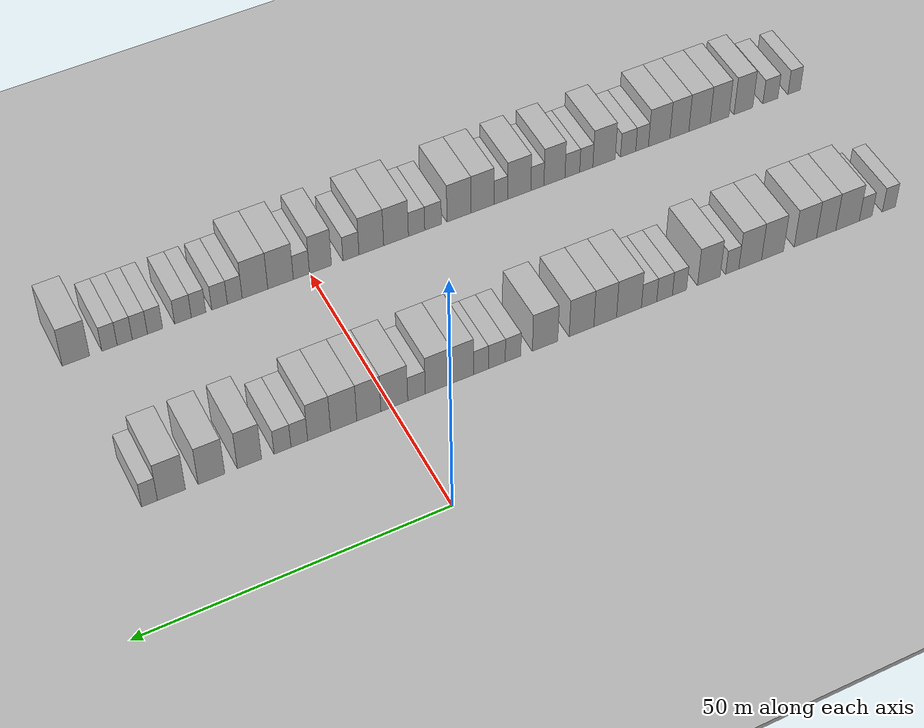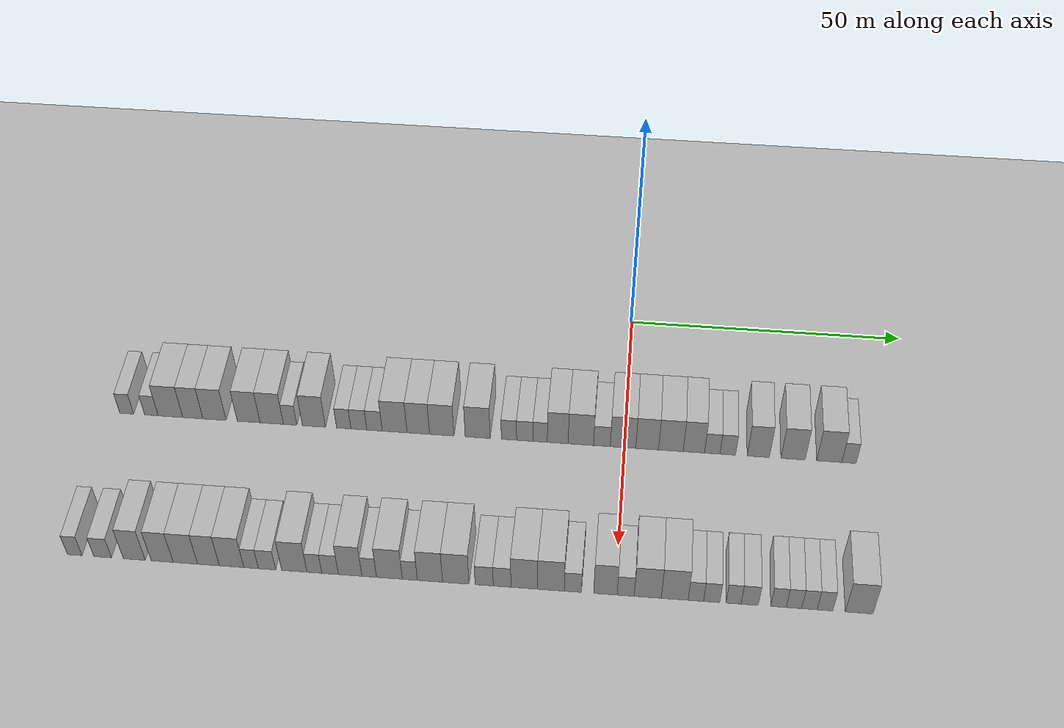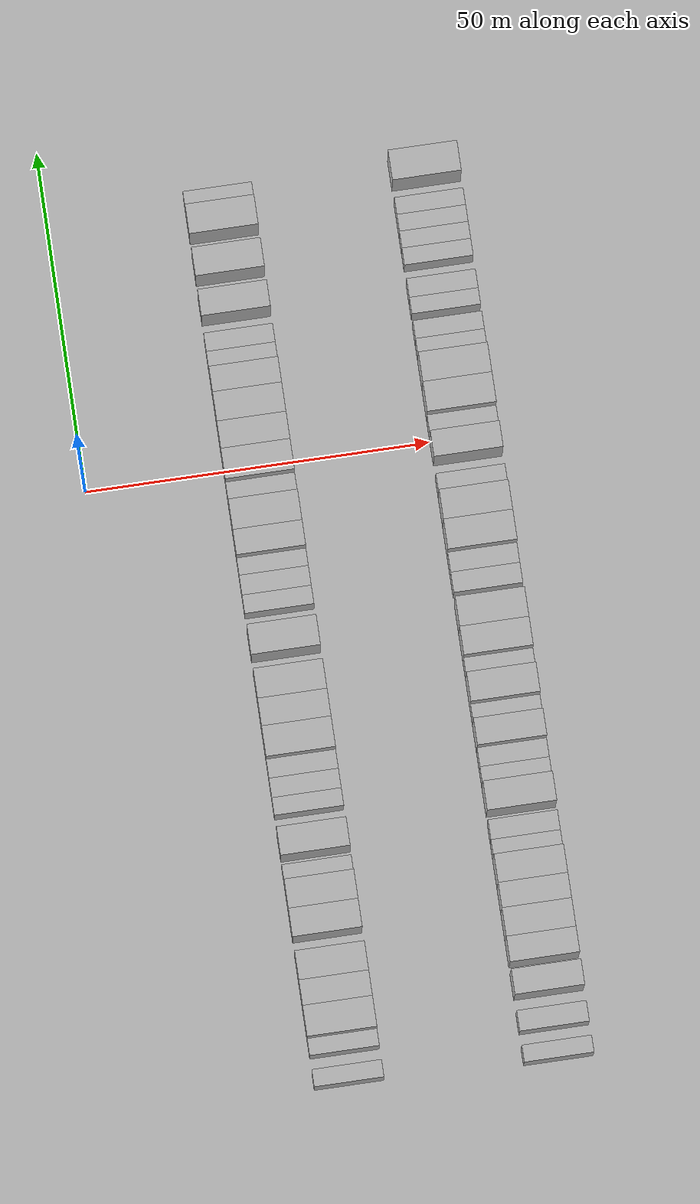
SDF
<sdf version="1.6">
 <world name="default">
  <include><name>ground_plane_1</name><uri>model://HANNAS_ground_plane</uri></include>
  <include>
   <name>ground_plane_2</name>
   <uri>model://HANNAS_ground_plane</uri>
   <pose>100 0 0  0 0 0</pose>
  </include>
  <model name="building_34">
   <static>1</static>
   <pose>25.0000 -89.0507 0 0.000000 0.000000 0.000000</pose>
   <link name="link">
    <pose>0 0 3.00 0 0 0</pose>
    <collision name="collision"><geometry><box><size>10.0000 2.5054 6.0000</size></box></geometry></collision>
    <visual name="visual">
     <cast_shadows>0</cast_shadows>
     <geometry><box><size>10.0000 2.5054 6.0000</size></box></geometry>
     <material>
      <script>
       <uri>model://HANNAS_wall/materials/scripts</uri>
       <uri>model://HANNAS_wall/materials/textures</uri>
       <name>vrc/HANNAS_wall</name>
      </script>
     </material>
    </visual>
   </link>
  </model>
  <model name="building_35">
   <static>1</static>
   <pose>25.0000 -84.5699 0 0.000000 0.000000 0.000000</pose>
   <link name="link">
    <pose>0 0 3.00 0 0 0</pose>
    <collision name="collision"><geometry><box><size>10.0000 2.4563 6.0000</size></box></geometry></collision>
    <visual name="visual">
     <cast_shadows>0</cast_shadows>
     <geometry><box><size>10.0000 2.4563 6.0000</size></box></geometry>
     <material>
      <script>
       <uri>model://HANNAS_wall/materials/scripts</uri>
       <uri>model://HANNAS_wall/materials/textures</uri>
       <name>vrc/HANNAS_wall</name>
      </script>
     </material>
    </visual>
   </link>
  </model>
  <model name="building_36">
   <static>1</static>
   <pose>25.0000 -81.1102 0 0.000000 0.000000 0.000000</pose>
   <link name="link">
    <pose>0 0 4.50 0 0 0</pose>
    <collision name="collision"><geometry><box><size>10.0000 4.4630 9.0000</size></box></geometry></collision>
    <visual name="visual">
     <cast_shadows>0</cast_shadows>
     <geometry><box><size>10.0000 4.4630 9.0000</size></box></geometry>
     <material>
      <script>
       <uri>model://HANNAS_wall/materials/scripts</uri>
       <uri>model://HANNAS_wall/materials/textures</uri>
       <name>vrc/HANNAS_wall</name>
      </script>
     </material>
    </visual>
   </link>
  </model>
  <model name="building_37">
   <static>1</static>
   <pose>25.0000 -77.0440 0 0.000000 0.000000 0.000000</pose>
   <link name="link">
    <pose>0 0 4.50 0 0 0</pose>
    <collision name="collision"><geometry><box><size>10.0000 3.6694 9.0000</size></box></geometry></collision>
    <visual name="visual">
     <cast_shadows>0</cast_shadows>
     <geometry><box><size>10.0000 3.6694 9.0000</size></box></geometry>
     <material>
      <script>
       <uri>model://HANNAS_wall/materials/scripts</uri>
       <uri>model://HANNAS_wall/materials/textures</uri>
       <name>vrc/HANNAS_wall</name>
      </script>
     </material>
    </visual>
   </link>
  </model>
  <model name="building_38">
   <static>1</static>
   <pose>25.0000 -73.1028 0 0.000000 0.000000 0.000000</pose>
   <link name="link">
    <pose>0 0 4.50 0 0 0</pose>
    <collision name="collision"><geometry><box><size>10.0000 4.2130 9.0000</size></box></geometry></collision>
    <visual name="visual">
     <cast_shadows>0</cast_shadows>
     <geometry><box><size>10.0000 4.2130 9.0000</size></box></geometry>
     <material>
      <script>
       <uri>model://HANNAS_wall/materials/scripts</uri>
       <uri>model://HANNAS_wall/materials/textures</uri>
       <name>vrc/HANNAS_wall</name>
      </script>
     </material>
    </visual>
   </link>
  </model>
  <model name="building_39">
   <static>1</static>
   <pose>25.0000 -66.9407 0 0.000000 0.000000 0.000000</pose>
   <link name="link">
    <pose>0 0 4.50 0 0 0</pose>
    <collision name="collision"><geometry><box><size>10.0000 4.1111 9.0000</size></box></geometry></collision>
    <visual name="visual">
     <cast_shadows>0</cast_shadows>
     <geometry><box><size>10.0000 4.1111 9.0000</size></box></geometry>
     <material>
      <script>
       <uri>model://HANNAS_wall/materials/scripts</uri>
       <uri>model://HANNAS_wall/materials/textures</uri>
       <name>vrc/HANNAS_wall</name>
      </script>
     </material>
    </visual>
   </link>
  </model>
  <model name="building_40">
   <static>1</static>
   <pose>25.0000 -62.7755 0 0.000000 0.000000 0.000000</pose>
   <link name="link">
    <pose>0 0 4.50 0 0 0</pose>
    <collision name="collision"><geometry><box><size>10.0000 4.2194 9.0000</size></box></geometry></collision>
    <visual name="visual">
     <cast_shadows>0</cast_shadows>
     <geometry><box><size>10.0000 4.2194 9.0000</size></box></geometry>
     <material>
      <script>
       <uri>model://HANNAS_wall/materials/scripts</uri>
       <uri>model://HANNAS_wall/materials/textures</uri>
       <name>vrc/HANNAS_wall</name>
      </script>
     </material>
    </visual>
   </link>
  </model>
  <model name="building_41">
   <static>1</static>
   <pose>25.0000 -59.4509 0 0.000000 0.000000 0.000000</pose>
   <link name="link">
    <pose>0 0 3.00 0 0 0</pose>
    <collision name="collision"><geometry><box><size>10.0000 2.4296 6.0000</size></box></geometry></collision>
    <visual name="visual">
     <cast_shadows>0</cast_shadows>
     <geometry><box><size>10.0000 2.4296 6.0000</size></box></geometry>
     <material>
      <script>
       <uri>model://HANNAS_wall/materials/scripts</uri>
       <uri>model://HANNAS_wall/materials/textures</uri>
       <name>vrc/HANNAS_wall</name>
      </script>
     </material>
    </visual>
   </link>
  </model>
  <model name="building_42">
   <static>1</static>
   <pose>25.0000 -55.1641 0 0.000000 0.000000 0.000000</pose>
   <link name="link">
    <pose>0 0 4.50 0 0 0</pose>
    <collision name="collision"><geometry><box><size>10.0000 4.1441 9.0000</size></box></geometry></collision>
    <visual name="visual">
     <cast_shadows>0</cast_shadows>
     <geometry><box><size>10.0000 4.1441 9.0000</size></box></geometry>
     <material>
      <script>
       <uri>model://HANNAS_wall/materials/scripts</uri>
       <uri>model://HANNAS_wall/materials/textures</uri>
       <name>vrc/HANNAS_wall</name>
      </script>
     </material>
    </visual>
   </link>
  </model>
  <model name="building_43">
   <static>1</static>
   <pose>25.0000 -49.8075 0 0.000000 0.000000 0.000000</pose>
   <link name="link">
    <pose>0 0 3.00 0 0 0</pose>
    <collision name="collision"><geometry><box><size>10.0000 2.5692 6.0000</size></box></geometry></collision>
    <visual name="visual">
     <cast_shadows>0</cast_shadows>
     <geometry><box><size>10.0000 2.5692 6.0000</size></box></geometry>
     <material>
      <script>
       <uri>model://HANNAS_wall/materials/scripts</uri>
       <uri>model://HANNAS_wall/materials/textures</uri>
       <name>vrc/HANNAS_wall</name>
      </script>
     </material>
    </visual>
   </link>
  </model>
  <model name="building_44">
   <static>1</static>
   <pose>25.0000 -47.1094 0 0.000000 0.000000 0.000000</pose>
   <link name="link">
    <pose>0 0 3.00 0 0 0</pose>
    <collision name="collision"><geometry><box><size>10.0000 2.8269 6.0000</size></box></geometry></collision>
    <visual name="visual">
     <cast_shadows>0</cast_shadows>
     <geometry><box><size>10.0000 2.8269 6.0000</size></box></geometry>
     <material>
      <script>
       <uri>model://HANNAS_wall/materials/scripts</uri>
       <uri>model://HANNAS_wall/materials/textures</uri>
       <name>vrc/HANNAS_wall</name>
      </script>
     </material>
    </visual>
   </link>
  </model>
  <model name="building_45">
   <static>1</static>
   <pose>25.0000 -44.3170 0 0.000000 0.000000 0.000000</pose>
   <link name="link">
    <pose>0 0 3.00 0 0 0</pose>
    <collision name="collision"><geometry><box><size>10.0000 2.7580 6.0000</size></box></geometry></collision>
    <visual name="visual">
     <cast_shadows>0</cast_shadows>
     <geometry><box><size>10.0000 2.7580 6.0000</size></box></geometry>
     <material>
      <script>
       <uri>model://HANNAS_wall/materials/scripts</uri>
       <uri>model://HANNAS_wall/materials/textures</uri>
       <name>vrc/HANNAS_wall</name>
      </script>
     </material>
    </visual>
   </link>
  </model>
  <model name="building_46">
   <static>1</static>
   <pose>25.0000 -40.7145 0 0.000000 0.000000 0.000000</pose>
   <link name="link">
    <pose>0 0 4.50 0 0 0</pose>
    <collision name="collision"><geometry><box><size>10.0000 4.4470 9.0000</size></box></geometry></collision>
    <visual name="visual">
     <cast_shadows>0</cast_shadows>
     <geometry><box><size>10.0000 4.4470 9.0000</size></box></geometry>
     <material>
      <script>
       <uri>model://HANNAS_wall/materials/scripts</uri>
       <uri>model://HANNAS_wall/materials/textures</uri>
       <name>vrc/HANNAS_wall</name>
      </script>
     </material>
    </visual>
   </link>
  </model>
  <model name="building_47">
   <static>1</static>
   <pose>25.0000 -36.4850 0 0.000000 0.000000 0.000000</pose>
   <link name="link">
    <pose>0 0 4.50 0 0 0</pose>
    <collision name="collision"><geometry><box><size>10.0000 4.0119 9.0000</size></box></geometry></collision>
    <visual name="visual">
     <cast_shadows>0</cast_shadows>
     <geometry><box><size>10.0000 4.0119 9.0000</size></box></geometry>
     <material>
      <script>
       <uri>model://HANNAS_wall/materials/scripts</uri>
       <uri>model://HANNAS_wall/materials/textures</uri>
       <name>vrc/HANNAS_wall</name>
      </script>
     </material>
    </visual>
   </link>
  </model>
  <model name="building_48">
   <static>1</static>
   <pose>25.0000 -32.3039 0 0.000000 0.000000 0.000000</pose>
   <link name="link">
    <pose>0 0 4.50 0 0 0</pose>
    <collision name="collision"><geometry><box><size>10.0000 4.3503 9.0000</size></box></geometry></collision>
    <visual name="visual">
     <cast_shadows>0</cast_shadows>
     <geometry><box><size>10.0000 4.3503 9.0000</size></box></geometry>
     <material>
      <script>
       <uri>model://HANNAS_wall/materials/scripts</uri>
       <uri>model://HANNAS_wall/materials/textures</uri>
       <name>vrc/HANNAS_wall</name>
      </script>
     </material>
    </visual>
   </link>
  </model>
  <model name="building_49">
   <static>1</static>
   <pose>25.0000 -25.9211 0 0.000000 0.000000 0.000000</pose>
   <link name="link">
    <pose>0 0 4.50 0 0 0</pose>
    <collision name="collision"><geometry><box><size>10.0000 4.4153 9.0000</size></box></geometry></collision>
    <visual name="visual">
     <cast_shadows>0</cast_shadows>
     <geometry><box><size>10.0000 4.4153 9.0000</size></box></geometry>
     <material>
      <script>
       <uri>model://HANNAS_wall/materials/scripts</uri>
       <uri>model://HANNAS_wall/materials/textures</uri>
       <name>vrc/HANNAS_wall</name>
      </script>
     </material>
    </visual>
   </link>
  </model>
  <model name="building_50">
   <static>1</static>
   <pose>25.0000 -20.3641 0 0.000000 0.000000 0.000000</pose>
   <link name="link">
    <pose>0 0 3.00 0 0 0</pose>
    <collision name="collision"><geometry><box><size>10.0000 2.6986 6.0000</size></box></geometry></collision>
    <visual name="visual">
     <cast_shadows>0</cast_shadows>
     <geometry><box><size>10.0000 2.6986 6.0000</size></box></geometry>
     <material>
      <script>
       <uri>model://HANNAS_wall/materials/scripts</uri>
       <uri>model://HANNAS_wall/materials/textures</uri>
       <name>vrc/HANNAS_wall</name>
      </script>
     </material>
    </visual>
   </link>
  </model>
  <model name="building_51">
   <static>1</static>
   <pose>25.0000 -17.5680 0 0.000000 0.000000 0.000000</pose>
   <link name="link">
    <pose>0 0 3.00 0 0 0</pose>
    <collision name="collision"><geometry><box><size>10.0000 2.8935 6.0000</size></box></geometry></collision>
    <visual name="visual">
     <cast_shadows>0</cast_shadows>
     <geometry><box><size>10.0000 2.8935 6.0000</size></box></geometry>
     <material>
      <script>
       <uri>model://HANNAS_wall/materials/scripts</uri>
       <uri>model://HANNAS_wall/materials/textures</uri>
       <name>vrc/HANNAS_wall</name>
      </script>
     </material>
    </visual>
   </link>
  </model>
  <model name="building_52">
   <static>1</static>
   <pose>25.0000 -14.8546 0 0.000000 0.000000 0.000000</pose>
   <link name="link">
    <pose>0 0 3.00 0 0 0</pose>
    <collision name="collision"><geometry><box><size>10.0000 2.5333 6.0000</size></box></geometry></collision>
    <visual name="visual">
     <cast_shadows>0</cast_shadows>
     <geometry><box><size>10.0000 2.5333 6.0000</size></box></geometry>
     <material>
      <script>
       <uri>model://HANNAS_wall/materials/scripts</uri>
       <uri>model://HANNAS_wall/materials/textures</uri>
       <name>vrc/HANNAS_wall</name>
      </script>
     </material>
    </visual>
   </link>
  </model>
  <model name="building_53">
   <static>1</static>
   <pose>25.0000 -11.7378 0 0.000000 0.000000 0.000000</pose>
   <link name="link">
    <pose>0 0 4.50 0 0 0</pose>
    <collision name="collision"><geometry><box><size>10.0000 3.7003 9.0000</size></box></geometry></collision>
    <visual name="visual">
     <cast_shadows>0</cast_shadows>
     <geometry><box><size>10.0000 3.7003 9.0000</size></box></geometry>
     <material>
      <script>
       <uri>model://HANNAS_wall/materials/scripts</uri>
       <uri>model://HANNAS_wall/materials/textures</uri>
       <name>vrc/HANNAS_wall</name>
      </script>
     </material>
    </visual>
   </link>
  </model>
  <model name="building_54">
   <static>1</static>
   <pose>25.0000 -7.6549 0 0.000000 0.000000 0.000000</pose>
   <link name="link">
    <pose>0 0 4.50 0 0 0</pose>
    <collision name="collision"><geometry><box><size>10.0000 4.4654 9.0000</size></box></geometry></collision>
    <visual name="visual">
     <cast_shadows>0</cast_shadows>
     <geometry><box><size>10.0000 4.4654 9.0000</size></box></geometry>
     <material>
      <script>
       <uri>model://HANNAS_wall/materials/scripts</uri>
       <uri>model://HANNAS_wall/materials/textures</uri>
       <name>vrc/HANNAS_wall</name>
      </script>
     </material>
    </visual>
   </link>
  </model>
  <model name="building_55">
   <static>1</static>
   <pose>25.0000 -3.9499 0 0.000000 0.000000 0.000000</pose>
   <link name="link">
    <pose>0 0 3.00 0 0 0</pose>
    <collision name="collision"><geometry><box><size>10.0000 2.9447 6.0000</size></box></geometry></collision>
    <visual name="visual">
     <cast_shadows>0</cast_shadows>
     <geometry><box><size>10.0000 2.9447 6.0000</size></box></geometry>
     <material>
      <script>
       <uri>model://HANNAS_wall/materials/scripts</uri>
       <uri>model://HANNAS_wall/materials/textures</uri>
       <name>vrc/HANNAS_wall</name>
      </script>
     </material>
    </visual>
   </link>
  </model>
  <model name="building_56">
   <static>1</static>
   <pose>25.0000 -0.2417 0 0.000000 0.000000 0.000000</pose>
   <link name="link">
    <pose>0 0 4.50 0 0 0</pose>
    <collision name="collision"><geometry><box><size>10.0000 4.4717 9.0000</size></box></geometry></collision>
    <visual name="visual">
     <cast_shadows>0</cast_shadows>
     <geometry><box><size>10.0000 4.4717 9.0000</size></box></geometry>
     <material>
      <script>
       <uri>model://HANNAS_wall/materials/scripts</uri>
       <uri>model://HANNAS_wall/materials/textures</uri>
       <name>vrc/HANNAS_wall</name>
      </script>
     </material>
    </visual>
   </link>
  </model>
  <model name="building_57">
   <static>1</static>
   <pose>25.0000 3.9892 0 0.000000 0.000000 0.000000</pose>
   <link name="link">
    <pose>0 0 4.50 0 0 0</pose>
    <collision name="collision"><geometry><box><size>10.0000 3.9901 9.0000</size></box></geometry></collision>
    <visual name="visual">
     <cast_shadows>0</cast_shadows>
     <geometry><box><size>10.0000 3.9901 9.0000</size></box></geometry>
     <material>
      <script>
       <uri>model://HANNAS_wall/materials/scripts</uri>
       <uri>model://HANNAS_wall/materials/textures</uri>
       <name>vrc/HANNAS_wall</name>
      </script>
     </material>
    </visual>
   </link>
  </model>
  <model name="building_58">
   <static>1</static>
   <pose>25.0000 8.1380 0 0.000000 0.000000 0.000000</pose>
   <link name="link">
    <pose>0 0 4.50 0 0 0</pose>
    <collision name="collision"><geometry><box><size>10.0000 4.3075 9.0000</size></box></geometry></collision>
    <visual name="visual">
     <cast_shadows>0</cast_shadows>
     <geometry><box><size>10.0000 4.3075 9.0000</size></box></geometry>
     <material>
      <script>
       <uri>model://HANNAS_wall/materials/scripts</uri>
       <uri>model://HANNAS_wall/materials/textures</uri>
       <name>vrc/HANNAS_wall</name>
      </script>
     </material>
    </visual>
   </link>
  </model>
  <model name="building_59">
   <static>1</static>
   <pose>25.0000 12.1608 0 0.000000 0.000000 0.000000</pose>
   <link name="link">
    <pose>0 0 4.50 0 0 0</pose>
    <collision name="collision"><geometry><box><size>10.0000 3.7382 9.0000</size></box></geometry></collision>
    <visual name="visual">
     <cast_shadows>0</cast_shadows>
     <geometry><box><size>10.0000 3.7382 9.0000</size></box></geometry>
     <material>
      <script>
       <uri>model://HANNAS_wall/materials/scripts</uri>
       <uri>model://HANNAS_wall/materials/textures</uri>
       <name>vrc/HANNAS_wall</name>
      </script>
     </material>
    </visual>
   </link>
  </model>
  <model name="building_60">
   <static>1</static>
   <pose>25.0000 15.3800 0 0.000000 0.000000 0.000000</pose>
   <link name="link">
    <pose>0 0 3.00 0 0 0</pose>
    <collision name="collision"><geometry><box><size>10.0000 2.7000 6.0000</size></box></geometry></collision>
    <visual name="visual">
     <cast_shadows>0</cast_shadows>
     <geometry><box><size>10.0000 2.7000 6.0000</size></box></geometry>
     <material>
      <script>
       <uri>model://HANNAS_wall/materials/scripts</uri>
       <uri>model://HANNAS_wall/materials/textures</uri>
       <name>vrc/HANNAS_wall</name>
      </script>
     </material>
    </visual>
   </link>
  </model>
  <model name="building_61">
   <static>1</static>
   <pose>25.0000 18.0946 0 0.000000 0.000000 0.000000</pose>
   <link name="link">
    <pose>0 0 3.00 0 0 0</pose>
    <collision name="collision"><geometry><box><size>10.0000 2.7292 6.0000</size></box></geometry></collision>
    <visual name="visual">
     <cast_shadows>0</cast_shadows>
     <geometry><box><size>10.0000 2.7292 6.0000</size></box></geometry>
     <material>
      <script>
       <uri>model://HANNAS_wall/materials/scripts</uri>
       <uri>model://HANNAS_wall/materials/textures</uri>
       <name>vrc/HANNAS_wall</name>
      </script>
     </material>
    </visual>
   </link>
  </model>
  <model name="building_62">
   <static>1</static>
   <pose>25.0000 23.4004 0 0.000000 0.000000 0.000000</pose>
   <link name="link">
    <pose>0 0 4.50 0 0 0</pose>
    <collision name="collision"><geometry><box><size>10.0000 3.8824 9.0000</size></box></geometry></collision>
    <visual name="visual">
     <cast_shadows>0</cast_shadows>
     <geometry><box><size>10.0000 3.8824 9.0000</size></box></geometry>
     <material>
      <script>
       <uri>model://HANNAS_wall/materials/scripts</uri>
       <uri>model://HANNAS_wall/materials/textures</uri>
       <name>vrc/HANNAS_wall</name>
      </script>
     </material>
    </visual>
   </link>
  </model>
  <model name="building_63">
   <static>1</static>
   <pose>25.0000 29.4496 0 0.000000 0.000000 0.000000</pose>
   <link name="link">
    <pose>0 0 4.50 0 0 0</pose>
    <collision name="collision"><geometry><box><size>10.0000 4.2161 9.0000</size></box></geometry></collision>
    <visual name="visual">
     <cast_shadows>0</cast_shadows>
     <geometry><box><size>10.0000 4.2161 9.0000</size></box></geometry>
     <material>
      <script>
       <uri>model://HANNAS_wall/materials/scripts</uri>
       <uri>model://HANNAS_wall/materials/textures</uri>
       <name>vrc/HANNAS_wall</name>
      </script>
     </material>
    </visual>
   </link>
  </model>
  <model name="building_64">
   <static>1</static>
   <pose>25.0000 35.7394 0 0.000000 0.000000 0.000000</pose>
   <link name="link">
    <pose>0 0 4.50 0 0 0</pose>
    <collision name="collision"><geometry><box><size>10.0000 4.3635 9.0000</size></box></geometry></collision>
    <visual name="visual">
     <cast_shadows>0</cast_shadows>
     <geometry><box><size>10.0000 4.3635 9.0000</size></box></geometry>
     <material>
      <script>
       <uri>model://HANNAS_wall/materials/scripts</uri>
       <uri>model://HANNAS_wall/materials/textures</uri>
       <name>vrc/HANNAS_wall</name>
      </script>
     </material>
    </visual>
   </link>
  </model>
  <model name="building_65">
   <static>1</static>
   <pose>25.0000 39.1544 0 0.000000 0.000000 0.000000</pose>
   <link name="link">
    <pose>0 0 3.00 0 0 0</pose>
    <collision name="collision"><geometry><box><size>10.0000 2.4665 6.0000</size></box></geometry></collision>
    <visual name="visual">
     <cast_shadows>0</cast_shadows>
     <geometry><box><size>10.0000 2.4665 6.0000</size></box></geometry>
     <material>
      <script>
       <uri>model://HANNAS_wall/materials/scripts</uri>
       <uri>model://HANNAS_wall/materials/textures</uri>
       <name>vrc/HANNAS_wall</name>
      </script>
     </material>
    </visual>
   </link>
  </model>
  <model name="building_127">
   <static>1</static>
   <pose>55.0000 -89.8999 0 0.000000 0.000000 0.000000</pose>
   <link name="link">
    <pose>0 0 3.00 0 0 0</pose>
    <collision name="collision"><geometry><box><size>10.0000 2.4620 6.0000</size></box></geometry></collision>
    <visual name="visual">
     <cast_shadows>0</cast_shadows>
     <geometry><box><size>10.0000 2.4620 6.0000</size></box></geometry>
     <material>
      <script>
       <uri>model://HANNAS_wall/materials/scripts</uri>
       <uri>model://HANNAS_wall/materials/textures</uri>
       <name>vrc/HANNAS_wall</name>
      </script>
     </material>
    </visual>
   </link>
  </model>
  <model name="building_128">
   <static>1</static>
   <pose>55.0000 -85.1788 0 0.000000 0.000000 0.000000</pose>
   <link name="link">
    <pose>0 0 3.00 0 0 0</pose>
    <collision name="collision"><geometry><box><size>10.0000 2.9803 6.0000</size></box></geometry></collision>
    <visual name="visual">
     <cast_shadows>0</cast_shadows>
     <geometry><box><size>10.0000 2.9803 6.0000</size></box></geometry>
     <material>
      <script>
       <uri>model://HANNAS_wall/materials/scripts</uri>
       <uri>model://HANNAS_wall/materials/textures</uri>
       <name>vrc/HANNAS_wall</name>
      </script>
     </material>
    </visual>
   </link>
  </model>
  <model name="building_129">
   <static>1</static>
   <pose>55.0000 -79.8422 0 0.000000 0.000000 0.000000</pose>
   <link name="link">
    <pose>0 0 4.50 0 0 0</pose>
    <collision name="collision"><geometry><box><size>10.0000 3.6928 9.0000</size></box></geometry></collision>
    <visual name="visual">
     <cast_shadows>0</cast_shadows>
     <geometry><box><size>10.0000 3.6928 9.0000</size></box></geometry>
     <material>
      <script>
       <uri>model://HANNAS_wall/materials/scripts</uri>
       <uri>model://HANNAS_wall/materials/textures</uri>
       <name>vrc/HANNAS_wall</name>
      </script>
     </material>
    </visual>
   </link>
  </model>
  <model name="building_130">
   <static>1</static>
   <pose>55.0000 -75.1509 0 0.000000 0.000000 0.000000</pose>
   <link name="link">
    <pose>0 0 4.50 0 0 0</pose>
    <collision name="collision"><geometry><box><size>10.0000 3.6899 9.0000</size></box></geometry></collision>
    <visual name="visual">
     <cast_shadows>0</cast_shadows>
     <geometry><box><size>10.0000 3.6899 9.0000</size></box></geometry>
     <material>
      <script>
       <uri>model://HANNAS_wall/materials/scripts</uri>
       <uri>model://HANNAS_wall/materials/textures</uri>
       <name>vrc/HANNAS_wall</name>
      </script>
     </material>
    </visual>
   </link>
  </model>
  <model name="building_131">
   <static>1</static>
   <pose>55.0000 -71.2461 0 0.000000 0.000000 0.000000</pose>
   <link name="link">
    <pose>0 0 4.50 0 0 0</pose>
    <collision name="collision"><geometry><box><size>10.0000 4.1197 9.0000</size></box></geometry></collision>
    <visual name="visual">
     <cast_shadows>0</cast_shadows>
     <geometry><box><size>10.0000 4.1197 9.0000</size></box></geometry>
     <material>
      <script>
       <uri>model://HANNAS_wall/materials/scripts</uri>
       <uri>model://HANNAS_wall/materials/textures</uri>
       <name>vrc/HANNAS_wall</name>
      </script>
     </material>
    </visual>
   </link>
  </model>
  <model name="building_132">
   <static>1</static>
   <pose>55.0000 -67.3628 0 0.000000 0.000000 0.000000</pose>
   <link name="link">
    <pose>0 0 4.50 0 0 0</pose>
    <collision name="collision"><geometry><box><size>10.0000 3.6469 9.0000</size></box></geometry></collision>
    <visual name="visual">
     <cast_shadows>0</cast_shadows>
     <geometry><box><size>10.0000 3.6469 9.0000</size></box></geometry>
     <material>
      <script>
       <uri>model://HANNAS_wall/materials/scripts</uri>
       <uri>model://HANNAS_wall/materials/textures</uri>
       <name>vrc/HANNAS_wall</name>
      </script>
     </material>
    </visual>
   </link>
  </model>
  <model name="building_133">
   <static>1</static>
   <pose>55.0000 -63.4818 0 0.000000 0.000000 0.000000</pose>
   <link name="link">
    <pose>0 0 4.50 0 0 0</pose>
    <collision name="collision"><geometry><box><size>10.0000 4.1150 9.0000</size></box></geometry></collision>
    <visual name="visual">
     <cast_shadows>0</cast_shadows>
     <geometry><box><size>10.0000 4.1150 9.0000</size></box></geometry>
     <material>
      <script>
       <uri>model://HANNAS_wall/materials/scripts</uri>
       <uri>model://HANNAS_wall/materials/textures</uri>
       <name>vrc/HANNAS_wall</name>
      </script>
     </material>
    </visual>
   </link>
  </model>
  <model name="building_134">
   <static>1</static>
   <pose>55.0000 -60.2081 0 0.000000 0.000000 0.000000</pose>
   <link name="link">
    <pose>0 0 3.00 0 0 0</pose>
    <collision name="collision"><geometry><box><size>10.0000 2.4324 6.0000</size></box></geometry></collision>
    <visual name="visual">
     <cast_shadows>0</cast_shadows>
     <geometry><box><size>10.0000 2.4324 6.0000</size></box></geometry>
     <material>
      <script>
       <uri>model://HANNAS_wall/materials/scripts</uri>
       <uri>model://HANNAS_wall/materials/textures</uri>
       <name>vrc/HANNAS_wall</name>
      </script>
     </material>
    </visual>
   </link>
  </model>
  <model name="building_135">
   <static>1</static>
   <pose>55.0000 -57.5445 0 0.000000 0.000000 0.000000</pose>
   <link name="link">
    <pose>0 0 3.00 0 0 0</pose>
    <collision name="collision"><geometry><box><size>10.0000 2.8948 6.0000</size></box></geometry></collision>
    <visual name="visual">
     <cast_shadows>0</cast_shadows>
     <geometry><box><size>10.0000 2.8948 6.0000</size></box></geometry>
     <material>
      <script>
       <uri>model://HANNAS_wall/materials/scripts</uri>
       <uri>model://HANNAS_wall/materials/textures</uri>
       <name>vrc/HANNAS_wall</name>
      </script>
     </material>
    </visual>
   </link>
  </model>
  <model name="building_136">
   <static>1</static>
   <pose>55.0000 -52.9820 0 0.000000 0.000000 0.000000</pose>
   <link name="link">
    <pose>0 0 4.50 0 0 0</pose>
    <collision name="collision"><geometry><box><size>10.0000 4.2301 9.0000</size></box></geometry></collision>
    <visual name="visual">
     <cast_shadows>0</cast_shadows>
     <geometry><box><size>10.0000 4.2301 9.0000</size></box></geometry>
     <material>
      <script>
       <uri>model://HANNAS_wall/materials/scripts</uri>
       <uri>model://HANNAS_wall/materials/textures</uri>
       <name>vrc/HANNAS_wall</name>
      </script>
     </material>
    </visual>
   </link>
  </model>
  <model name="building_137">
   <static>1</static>
   <pose>55.0000 -49.6366 0 0.000000 0.000000 0.000000</pose>
   <link name="link">
    <pose>0 0 3.00 0 0 0</pose>
    <collision name="collision"><geometry><box><size>10.0000 2.4607 6.0000</size></box></geometry></collision>
    <visual name="visual">
     <cast_shadows>0</cast_shadows>
     <geometry><box><size>10.0000 2.4607 6.0000</size></box></geometry>
     <material>
      <script>
       <uri>model://HANNAS_wall/materials/scripts</uri>
       <uri>model://HANNAS_wall/materials/textures</uri>
       <name>vrc/HANNAS_wall</name>
      </script>
     </material>
    </visual>
   </link>
  </model>
  <model name="building_138">
   <static>1</static>
   <pose>55.0000 -47.0267 0 0.000000 0.000000 0.000000</pose>
   <link name="link">
    <pose>0 0 3.00 0 0 0</pose>
    <collision name="collision"><geometry><box><size>10.0000 2.7591 6.0000</size></box></geometry></collision>
    <visual name="visual">
     <cast_shadows>0</cast_shadows>
     <geometry><box><size>10.0000 2.7591 6.0000</size></box></geometry>
     <material>
      <script>
       <uri>model://HANNAS_wall/materials/scripts</uri>
       <uri>model://HANNAS_wall/materials/textures</uri>
       <name>vrc/HANNAS_wall</name>
      </script>
     </material>
    </visual>
   </link>
  </model>
  <model name="building_139">
   <static>1</static>
   <pose>55.0000 -43.6914 0 0.000000 0.000000 0.000000</pose>
   <link name="link">
    <pose>0 0 4.50 0 0 0</pose>
    <collision name="collision"><geometry><box><size>10.0000 3.9114 9.0000</size></box></geometry></collision>
    <visual name="visual">
     <cast_shadows>0</cast_shadows>
     <geometry><box><size>10.0000 3.9114 9.0000</size></box></geometry>
     <material>
      <script>
       <uri>model://HANNAS_wall/materials/scripts</uri>
       <uri>model://HANNAS_wall/materials/textures</uri>
       <name>vrc/HANNAS_wall</name>
      </script>
     </material>
    </visual>
   </link>
  </model>
  <model name="building_140">
   <static>1</static>
   <pose>55.0000 -40.5246 0 0.000000 0.000000 0.000000</pose>
   <link name="link">
    <pose>0 0 3.00 0 0 0</pose>
    <collision name="collision"><geometry><box><size>10.0000 2.4222 6.0000</size></box></geometry></collision>
    <visual name="visual">
     <cast_shadows>0</cast_shadows>
     <geometry><box><size>10.0000 2.4222 6.0000</size></box></geometry>
     <material>
      <script>
       <uri>model://HANNAS_wall/materials/scripts</uri>
       <uri>model://HANNAS_wall/materials/textures</uri>
       <name>vrc/HANNAS_wall</name>
      </script>
     </material>
    </visual>
   </link>
  </model>
  <model name="building_141">
   <static>1</static>
   <pose>55.0000 -37.1706 0 0.000000 0.000000 0.000000</pose>
   <link name="link">
    <pose>0 0 4.50 0 0 0</pose>
    <collision name="collision"><geometry><box><size>10.0000 4.2858 9.0000</size></box></geometry></collision>
    <visual name="visual">
     <cast_shadows>0</cast_shadows>
     <geometry><box><size>10.0000 4.2858 9.0000</size></box></geometry>
     <material>
      <script>
       <uri>model://HANNAS_wall/materials/scripts</uri>
       <uri>model://HANNAS_wall/materials/textures</uri>
       <name>vrc/HANNAS_wall</name>
      </script>
     </material>
    </visual>
   </link>
  </model>
  <model name="building_142">
   <static>1</static>
   <pose>55.0000 -33.7890 0 0.000000 0.000000 0.000000</pose>
   <link name="link">
    <pose>0 0 3.00 0 0 0</pose>
    <collision name="collision"><geometry><box><size>10.0000 2.4775 6.0000</size></box></geometry></collision>
    <visual name="visual">
     <cast_shadows>0</cast_shadows>
     <geometry><box><size>10.0000 2.4775 6.0000</size></box></geometry>
     <material>
      <script>
       <uri>model://HANNAS_wall/materials/scripts</uri>
       <uri>model://HANNAS_wall/materials/textures</uri>
       <name>vrc/HANNAS_wall</name>
      </script>
     </material>
    </visual>
   </link>
  </model>
  <model name="building_143">
   <static>1</static>
   <pose>55.0000 -30.4707 0 0.000000 0.000000 0.000000</pose>
   <link name="link">
    <pose>0 0 4.50 0 0 0</pose>
    <collision name="collision"><geometry><box><size>10.0000 4.1591 9.0000</size></box></geometry></collision>
    <visual name="visual">
     <cast_shadows>0</cast_shadows>
     <geometry><box><size>10.0000 4.1591 9.0000</size></box></geometry>
     <material>
      <script>
       <uri>model://HANNAS_wall/materials/scripts</uri>
       <uri>model://HANNAS_wall/materials/textures</uri>
       <name>vrc/HANNAS_wall</name>
      </script>
     </material>
    </visual>
   </link>
  </model>
  <model name="building_144">
   <static>1</static>
   <pose>55.0000 -26.2092 0 0.000000 0.000000 0.000000</pose>
   <link name="link">
    <pose>0 0 4.50 0 0 0</pose>
    <collision name="collision"><geometry><box><size>10.0000 4.3640 9.0000</size></box></geometry></collision>
    <visual name="visual">
     <cast_shadows>0</cast_shadows>
     <geometry><box><size>10.0000 4.3640 9.0000</size></box></geometry>
     <material>
      <script>
       <uri>model://HANNAS_wall/materials/scripts</uri>
       <uri>model://HANNAS_wall/materials/textures</uri>
       <name>vrc/HANNAS_wall</name>
      </script>
     </material>
    </visual>
   </link>
  </model>
  <model name="building_145">
   <static>1</static>
   <pose>55.0000 -21.5358 0 0.000000 0.000000 0.000000</pose>
   <link name="link">
    <pose>0 0 3.00 0 0 0</pose>
    <collision name="collision"><geometry><box><size>10.0000 2.9827 6.0000</size></box></geometry></collision>
    <visual name="visual">
     <cast_shadows>0</cast_shadows>
     <geometry><box><size>10.0000 2.9827 6.0000</size></box></geometry>
     <material>
      <script>
       <uri>model://HANNAS_wall/materials/scripts</uri>
       <uri>model://HANNAS_wall/materials/textures</uri>
       <name>vrc/HANNAS_wall</name>
      </script>
     </material>
    </visual>
   </link>
  </model>
  <model name="building_146">
   <static>1</static>
   <pose>55.0000 -18.5882 0 0.000000 0.000000 0.000000</pose>
   <link name="link">
    <pose>0 0 3.00 0 0 0</pose>
    <collision name="collision"><geometry><box><size>10.0000 2.9126 6.0000</size></box></geometry></collision>
    <visual name="visual">
     <cast_shadows>0</cast_shadows>
     <geometry><box><size>10.0000 2.9126 6.0000</size></box></geometry>
     <material>
      <script>
       <uri>model://HANNAS_wall/materials/scripts</uri>
       <uri>model://HANNAS_wall/materials/textures</uri>
       <name>vrc/HANNAS_wall</name>
      </script>
     </material>
    </visual>
   </link>
  </model>
  <model name="building_147">
   <static>1</static>
   <pose>55.0000 -14.9373 0 0.000000 0.000000 0.000000</pose>
   <link name="link">
    <pose>0 0 4.50 0 0 0</pose>
    <collision name="collision"><geometry><box><size>10.0000 4.3892 9.0000</size></box></geometry></collision>
    <visual name="visual">
     <cast_shadows>0</cast_shadows>
     <geometry><box><size>10.0000 4.3892 9.0000</size></box></geometry>
     <material>
      <script>
       <uri>model://HANNAS_wall/materials/scripts</uri>
       <uri>model://HANNAS_wall/materials/textures</uri>
       <name>vrc/HANNAS_wall</name>
      </script>
     </material>
    </visual>
   </link>
  </model>
  <model name="building_148">
   <static>1</static>
   <pose>55.0000 -10.5731 0 0.000000 0.000000 0.000000</pose>
   <link name="link">
    <pose>0 0 4.50 0 0 0</pose>
    <collision name="collision"><geometry><box><size>10.0000 4.3394 9.0000</size></box></geometry></collision>
    <visual name="visual">
     <cast_shadows>0</cast_shadows>
     <geometry><box><size>10.0000 4.3394 9.0000</size></box></geometry>
     <material>
      <script>
       <uri>model://HANNAS_wall/materials/scripts</uri>
       <uri>model://HANNAS_wall/materials/textures</uri>
       <name>vrc/HANNAS_wall</name>
      </script>
     </material>
    </visual>
   </link>
  </model>
  <model name="building_149">
   <static>1</static>
   <pose>55.0000 -6.9974 0 0.000000 0.000000 0.000000</pose>
   <link name="link">
    <pose>0 0 3.00 0 0 0</pose>
    <collision name="collision"><geometry><box><size>10.0000 2.8119 6.0000</size></box></geometry></collision>
    <visual name="visual">
     <cast_shadows>0</cast_shadows>
     <geometry><box><size>10.0000 2.8119 6.0000</size></box></geometry>
     <material>
      <script>
       <uri>model://HANNAS_wall/materials/scripts</uri>
       <uri>model://HANNAS_wall/materials/textures</uri>
       <name>vrc/HANNAS_wall</name>
      </script>
     </material>
    </visual>
   </link>
  </model>
  <model name="building_150">
   <static>1</static>
   <pose>55.0000 -1.6817 0 0.000000 0.000000 0.000000</pose>
   <link name="link">
    <pose>0 0 4.50 0 0 0</pose>
    <collision name="collision"><geometry><box><size>10.0000 3.8195 9.0000</size></box></geometry></collision>
    <visual name="visual">
     <cast_shadows>0</cast_shadows>
     <geometry><box><size>10.0000 3.8195 9.0000</size></box></geometry>
     <material>
      <script>
       <uri>model://HANNAS_wall/materials/scripts</uri>
       <uri>model://HANNAS_wall/materials/textures</uri>
       <name>vrc/HANNAS_wall</name>
      </script>
     </material>
    </visual>
   </link>
  </model>
  <model name="building_151">
   <static>1</static>
   <pose>55.0000 1.6183 0 0.000000 0.000000 0.000000</pose>
   <link name="link">
    <pose>0 0 3.00 0 0 0</pose>
    <collision name="collision"><geometry><box><size>10.0000 2.7803 6.0000</size></box></geometry></collision>
    <visual name="visual">
     <cast_shadows>0</cast_shadows>
     <geometry><box><size>10.0000 2.7803 6.0000</size></box></geometry>
     <material>
      <script>
       <uri>model://HANNAS_wall/materials/scripts</uri>
       <uri>model://HANNAS_wall/materials/textures</uri>
       <name>vrc/HANNAS_wall</name>
      </script>
     </material>
    </visual>
   </link>
  </model>
  <model name="building_152">
   <static>1</static>
   <pose>55.0000 5.2064 0 0.000000 0.000000 0.000000</pose>
   <link name="link">
    <pose>0 0 4.50 0 0 0</pose>
    <collision name="collision"><geometry><box><size>10.0000 4.3960 9.0000</size></box></geometry></collision>
    <visual name="visual">
     <cast_shadows>0</cast_shadows>
     <geometry><box><size>10.0000 4.3960 9.0000</size></box></geometry>
     <material>
      <script>
       <uri>model://HANNAS_wall/materials/scripts</uri>
       <uri>model://HANNAS_wall/materials/textures</uri>
       <name>vrc/HANNAS_wall</name>
      </script>
     </material>
    </visual>
   </link>
  </model>
  <model name="building_153">
   <static>1</static>
   <pose>55.0000 9.5789 0 0.000000 0.000000 0.000000</pose>
   <link name="link">
    <pose>0 0 4.50 0 0 0</pose>
    <collision name="collision"><geometry><box><size>10.0000 4.3489 9.0000</size></box></geometry></collision>
    <visual name="visual">
     <cast_shadows>0</cast_shadows>
     <geometry><box><size>10.0000 4.3489 9.0000</size></box></geometry>
     <material>
      <script>
       <uri>model://HANNAS_wall/materials/scripts</uri>
       <uri>model://HANNAS_wall/materials/textures</uri>
       <name>vrc/HANNAS_wall</name>
      </script>
     </material>
    </visual>
   </link>
  </model>
  <model name="building_154">
   <static>1</static>
   <pose>55.0000 13.0118 0 0.000000 0.000000 0.000000</pose>
   <link name="link">
    <pose>0 0 3.00 0 0 0</pose>
    <collision name="collision"><geometry><box><size>10.0000 2.5170 6.0000</size></box></geometry></collision>
    <visual name="visual">
     <cast_shadows>0</cast_shadows>
     <geometry><box><size>10.0000 2.5170 6.0000</size></box></geometry>
     <material>
      <script>
       <uri>model://HANNAS_wall/materials/scripts</uri>
       <uri>model://HANNAS_wall/materials/textures</uri>
       <name>vrc/HANNAS_wall</name>
      </script>
     </material>
    </visual>
   </link>
  </model>
  <model name="building_155">
   <static>1</static>
   <pose>55.0000 15.5863 0 0.000000 0.000000 0.000000</pose>
   <link name="link">
    <pose>0 0 3.00 0 0 0</pose>
    <collision name="collision"><geometry><box><size>10.0000 2.6319 6.0000</size></box></geometry></collision>
    <visual name="visual">
     <cast_shadows>0</cast_shadows>
     <geometry><box><size>10.0000 2.6319 6.0000</size></box></geometry>
     <material>
      <script>
       <uri>model://HANNAS_wall/materials/scripts</uri>
       <uri>model://HANNAS_wall/materials/textures</uri>
       <name>vrc/HANNAS_wall</name>
      </script>
     </material>
    </visual>
   </link>
  </model>
  <model name="building_156">
   <static>1</static>
   <pose>55.0000 19.1162 0 0.000000 0.000000 0.000000</pose>
   <link name="link">
    <pose>0 0 3.00 0 0 0</pose>
    <collision name="collision"><geometry><box><size>10.0000 2.4281 6.0000</size></box></geometry></collision>
    <visual name="visual">
     <cast_shadows>0</cast_shadows>
     <geometry><box><size>10.0000 2.4281 6.0000</size></box></geometry>
     <material>
      <script>
       <uri>model://HANNAS_wall/materials/scripts</uri>
       <uri>model://HANNAS_wall/materials/textures</uri>
       <name>vrc/HANNAS_wall</name>
      </script>
     </material>
    </visual>
   </link>
  </model>
  <model name="building_157">
   <static>1</static>
   <pose>55.0000 21.7237 0 0.000000 0.000000 0.000000</pose>
   <link name="link">
    <pose>0 0 3.00 0 0 0</pose>
    <collision name="collision"><geometry><box><size>10.0000 2.7868 6.0000</size></box></geometry></collision>
    <visual name="visual">
     <cast_shadows>0</cast_shadows>
     <geometry><box><size>10.0000 2.7868 6.0000</size></box></geometry>
     <material>
      <script>
       <uri>model://HANNAS_wall/materials/scripts</uri>
       <uri>model://HANNAS_wall/materials/textures</uri>
       <name>vrc/HANNAS_wall</name>
      </script>
     </material>
    </visual>
   </link>
  </model>
  <model name="building_158">
   <static>1</static>
   <pose>55.0000 26.3717 0 0.000000 0.000000 0.000000</pose>
   <link name="link">
    <pose>0 0 3.00 0 0 0</pose>
    <collision name="collision"><geometry><box><size>10.0000 2.5093 6.0000</size></box></geometry></collision>
    <visual name="visual">
     <cast_shadows>0</cast_shadows>
     <geometry><box><size>10.0000 2.5093 6.0000</size></box></geometry>
     <material>
      <script>
       <uri>model://HANNAS_wall/materials/scripts</uri>
       <uri>model://HANNAS_wall/materials/textures</uri>
       <name>vrc/HANNAS_wall</name>
      </script>
     </material>
    </visual>
   </link>
  </model>
  <model name="building_159">
   <static>1</static>
   <pose>55.0000 28.8742 0 0.000000 0.000000 0.000000</pose>
   <link name="link">
    <pose>0 0 3.00 0 0 0</pose>
    <collision name="collision"><geometry><box><size>10.0000 2.4955 6.0000</size></box></geometry></collision>
    <visual name="visual">
     <cast_shadows>0</cast_shadows>
     <geometry><box><size>10.0000 2.4955 6.0000</size></box></geometry>
     <material>
      <script>
       <uri>model://HANNAS_wall/materials/scripts</uri>
       <uri>model://HANNAS_wall/materials/textures</uri>
       <name>vrc/HANNAS_wall</name>
      </script>
     </material>
    </visual>
   </link>
  </model>
  <model name="building_160">
   <static>1</static>
   <pose>55.0000 31.3643 0 0.000000 0.000000 0.000000</pose>
   <link name="link">
    <pose>0 0 3.00 0 0 0</pose>
    <collision name="collision"><geometry><box><size>10.0000 2.4848 6.0000</size></box></geometry></collision>
    <visual name="visual">
     <cast_shadows>0</cast_shadows>
     <geometry><box><size>10.0000 2.4848 6.0000</size></box></geometry>
     <material>
      <script>
       <uri>model://HANNAS_wall/materials/scripts</uri>
       <uri>model://HANNAS_wall/materials/textures</uri>
       <name>vrc/HANNAS_wall</name>
      </script>
     </material>
    </visual>
   </link>
  </model>
  <model name="building_161">
   <static>1</static>
   <pose>55.0000 33.8622 0 0.000000 0.000000 0.000000</pose>
   <link name="link">
    <pose>0 0 3.00 0 0 0</pose>
    <collision name="collision"><geometry><box><size>10.0000 2.5110 6.0000</size></box></geometry></collision>
    <visual name="visual">
     <cast_shadows>0</cast_shadows>
     <geometry><box><size>10.0000 2.5110 6.0000</size></box></geometry>
     <material>
      <script>
       <uri>model://HANNAS_wall/materials/scripts</uri>
       <uri>model://HANNAS_wall/materials/textures</uri>
       <name>vrc/HANNAS_wall</name>
      </script>
     </material>
    </visual>
   </link>
  </model>
  <model name="building_162">
   <static>1</static>
   <pose>55.0000 39.3290 0 0.000000 0.000000 0.000000</pose>
   <link name="link">
    <pose>0 0 4.50 0 0 0</pose>
    <collision name="collision"><geometry><box><size>10.0000 4.4226 9.0000</size></box></geometry></collision>
    <visual name="visual">
     <cast_shadows>0</cast_shadows>
     <geometry><box><size>10.0000 4.4226 9.0000</size></box></geometry>
     <material>
      <script>
       <uri>model://HANNAS_wall/materials/scripts</uri>
       <uri>model://HANNAS_wall/materials/textures</uri>
       <name>vrc/HANNAS_wall</name>
      </script>
     </material>
    </visual>
   </link>
  </model>
 </world>
</sdf>
